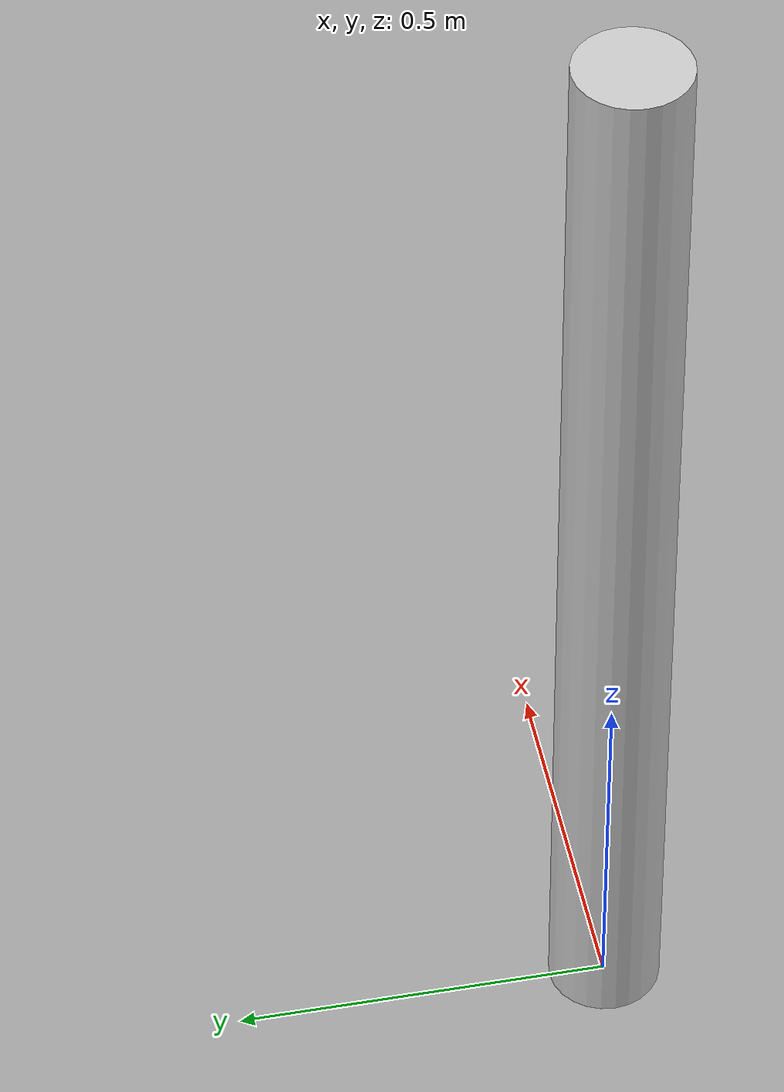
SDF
<?xml version="1.0"?>
<sdf version="1.9">
  <model name="sauvc_orange_flare">
    <static>true</static>
    <plugin filename="gz-sim-label-system" name="gz::sim::systems::Label">
      <label>3</label>
    </plugin>
    <link name="flare">
      <pose>0 0 0.8 0 0 0</pose>
      <inertial>
        <pose>0 0 0 0 0 0</pose>
        <mass>2</mass>
        <inertia>
          <ixx>0.429479</ixx><ixy>0</ixy><ixz>0</ixz>
          <iyy>0.429479</iyy><iyz>0</iyz>
          <izz>0.005625</izz>
        </inertia>
      </inertial>
      <visual name="flare_visual">
        <pose>0 0 0 0 0 0</pose>
        <geometry><cylinder><radius>0.075</radius><length>1.6</length></cylinder></geometry>
        <material>
          <ambient>0.8 0.8 0.8 1</ambient>
          <diffuse>0.8 0.8 0.8 1</diffuse>
          <specular>0.06 0.06 0.06 1</specular>
          <emissive>0.14 0.14 0.14 1</emissive>
          <pbr>
            <metal>
              <albedo_map>model://sauvc_textures/flare_orange.png</albedo_map>
              <metalness>0.0</metalness>
              <roughness_map>model://sauvc_textures/rough_fabric.png</roughness_map>
              <normal_map>model://sauvc_textures/norm_fabric.png</normal_map>
            </metal>
          </pbr>
        </material>
      </visual>
      <collision name="flare_collision">
        <pose>0 0 0 0 0 0</pose>
        <geometry><cylinder><radius>0.075</radius><length>1.6</length></cylinder></geometry>
      </collision>
    </link>
  </model>
</sdf>
